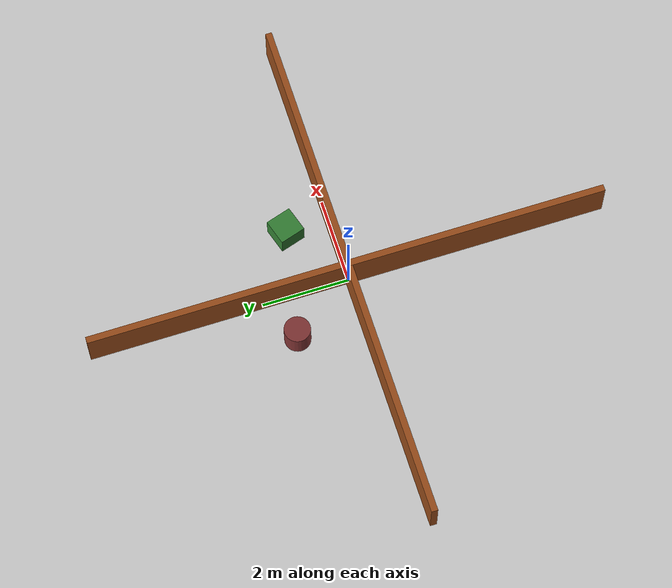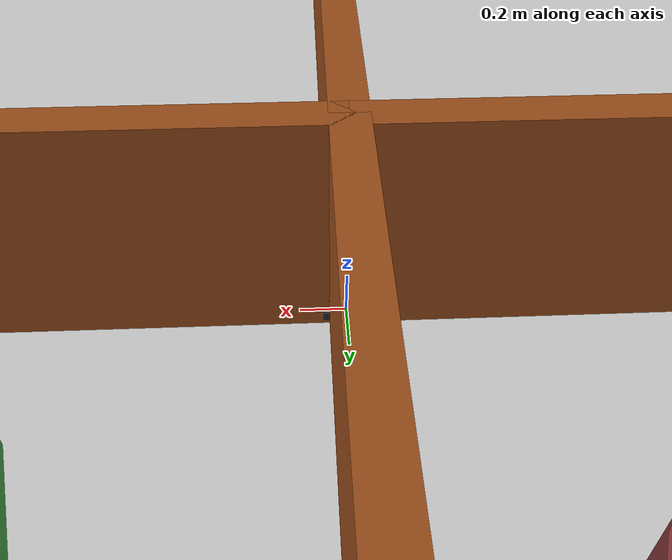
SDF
<?xml version="1.0" ?>
<sdf version="1.8">
  <world name="tank_world">

    <!--                  PHYSICS                     -->
    <physics name="default" type="ode">
      <max_step_size>0.001</max_step_size>
      <real_time_factor>1.0</real_time_factor>
    </physics>

    <!--              REQUIRED SYSTEM PLUGINS         -->
    <!-- Physics engine -->
    <plugin filename="ignition-gazebo-physics-system"
            name="ignition::gazebo::systems::Physics"/>
    <!-- Sensor rendering (LIDAR, IMU) -->
    <plugin filename="ignition-gazebo-sensors-system"
            name="ignition::gazebo::systems::Sensors">
      <render_engine>ogre2</render_engine>
    </plugin>
    <!-- Scene broadcasting (needed for GUI if ever used) -->
    <plugin filename="ignition-gazebo-scene-broadcaster-system"
            name="ignition::gazebo::systems::SceneBroadcaster"/>
    <!-- User commands (spawn, delete, etc.) -->
    <plugin filename="ignition-gazebo-user-commands-system"
            name="ignition::gazebo::systems::UserCommands"/>

    <!--               GROUND + LIGHT                 -->
    <light type="directional" name="sun">
      <cast_shadows>true</cast_shadows>
      <pose>0 0 10 0 0 0</pose>
      <diffuse>0.8 0.8 0.8 1</diffuse>
      <specular>0.2 0.2 0.2 1</specular>
      <direction>-0.5 0.1 -0.9</direction>
    </light>

    <model name="ground_plane">
      <static>true</static>
      <link name="ground_link">
        <collision name="collision">
          <geometry><plane><normal>0 0 1</normal><size>100 100</size></plane></geometry>
        </collision>
        <visual name="visual">
          <geometry><plane><normal>0 0 1</normal><size>100 100</size></plane></geometry>
          <material>
            <ambient>0.8 0.8 0.8 1</ambient>
            <diffuse>0.8 0.8 0.8 1</diffuse>
          </material>
        </visual>
      </link>
    </model>

    <!--            SOME WALLS TO SCAN                -->
    <!-- Simple obstacles so the LIDAR has something  -->
    <!-- to see and SLAM has features to work with.   -->

    <model name="wall_north">
      <static>true</static>
      <pose>3 0 0.5 0 0 0</pose>
      <link name="link">
        <collision name="collision">
          <geometry><box><size>6 0.15 1.0</size></box></geometry>
        </collision>
        <visual name="visual">
          <geometry><box><size>6 0.15 1.0</size></box></geometry>
          <material><ambient>0.6 0.3 0.1 1</ambient><diffuse>0.6 0.3 0.1 1</diffuse></material>
        </visual>
      </link>
    </model>

    <model name="wall_south">
      <static>true</static>
      <pose>-3 0 0.5 0 0 0</pose>
      <link name="link">
        <collision name="collision">
          <geometry><box><size>6 0.15 1.0</size></box></geometry>
        </collision>
        <visual name="visual">
          <geometry><box><size>6 0.15 1.0</size></box></geometry>
          <material><ambient>0.6 0.3 0.1 1</ambient><diffuse>0.6 0.3 0.1 1</diffuse></material>
        </visual>
      </link>
    </model>

    <model name="wall_east">
      <static>true</static>
      <pose>0 3 0.5 0 0 1.5708</pose>
      <link name="link">
        <collision name="collision">
          <geometry><box><size>6 0.15 1.0</size></box></geometry>
        </collision>
        <visual name="visual">
          <geometry><box><size>6 0.15 1.0</size></box></geometry>
          <material><ambient>0.6 0.3 0.1 1</ambient><diffuse>0.6 0.3 0.1 1</diffuse></material>
        </visual>
      </link>
    </model>

    <model name="wall_west">
      <static>true</static>
      <pose>0 -3 0.5 0 0 1.5708</pose>
      <link name="link">
        <collision name="collision">
          <geometry><box><size>6 0.15 1.0</size></box></geometry>
        </collision>
        <visual name="visual">
          <geometry><box><size>6 0.15 1.0</size></box></geometry>
          <material><ambient>0.6 0.3 0.1 1</ambient><diffuse>0.6 0.3 0.1 1</diffuse></material>
        </visual>
      </link>
    </model>

    <!-- A box obstacle in the room -->
    <model name="obstacle_box">
      <static>true</static>
      <pose>1.5 1.0 0.25 0 0 0.3</pose>
      <link name="link">
        <collision name="collision">
          <geometry><box><size>0.6 0.6 0.5</size></box></geometry>
        </collision>
        <visual name="visual">
          <geometry><box><size>0.6 0.6 0.5</size></box></geometry>
          <material><ambient>0.2 0.5 0.2 1</ambient><diffuse>0.2 0.5 0.2 1</diffuse></material>
        </visual>
      </link>
    </model>

    <!-- A cylinder obstacle -->
    <model name="obstacle_cylinder">
      <static>true</static>
      <pose>-1.0 1.5 0.3 0 0 0</pose>
      <link name="link">
        <collision name="collision">
          <geometry><cylinder><radius>0.3</radius><length>0.6</length></cylinder></geometry>
        </collision>
        <visual name="visual">
          <geometry><cylinder><radius>0.3</radius><length>0.6</length></cylinder></geometry>
          <material><ambient>0.5 0.2 0.2 1</ambient><diffuse>0.5 0.2 0.2 1</diffuse></material>
        </visual>
      </link>
    </model>

    <!--                  TANK MODEL                  -->
    <model name="my_tank">
      <pose>0 0 0.05 0 0 0</pose>

      <!-- ======== BASE LINK (chassis) ======== -->
      <link name="base_link">
        <inertial>
          <pose>0.0115 0 0.004 0 0 0</pose>
          <mass>1.02</mass>
          <inertia>
            <ixx>0.00283</ixx><ixy>0</ixy><ixz>0</ixz>
            <iyy>0.00301</iyy><iyz>0</iyz>
            <izz>0.00554</izz>
          </inertia>
        </inertial>
        <collision name="chassis_collision">
          <pose>0.0115 0 0.004 0 0 0</pose>
          <geometry><box><size>0.1833 0.1776 0.0423</size></box></geometry>
        </collision>
        <visual name="chassis_visual">
          <pose>0.0115 0 0.004 0 0 0</pose>
          <geometry><box><size>0.1833 0.1776 0.0423</size></box></geometry>
          <material><ambient>0.1 0.1 0.1 1</ambient><diffuse>0.15 0.15 0.15 1</diffuse></material>
        </visual>

        <!-- Platform (visual only, merged into base_link) -->
        <visual name="platform_visual">
          <pose>0 0 0.082 0 0 0</pose>
          <geometry><box><size>0.2 0.152 0.002</size></box></geometry>
          <material><ambient>0.1 0.1 0.1 1</ambient><diffuse>0.1 0.1 0.1 1</diffuse></material>
        </visual>

        <!-- LIDAR housing (visual only) -->
        <visual name="lidar_housing_visual">
          <pose>0.05 0 0.112 0 0 0</pose>
          <geometry><cylinder><radius>0.035</radius><length>0.03</length></cylinder></geometry>
          <material><ambient>0.4 0.4 0.4 1</ambient><diffuse>0.5 0.5 0.5 1</diffuse></material>
        </visual>

        <!-- IMU sensor (attached to base_link) -->
        <sensor name="imu_sensor" type="imu">
          <pose>0 0 0.078 0 0 0</pose>
          <always_on>true</always_on>
          <update_rate>50</update_rate>
          <topic>imu</topic>
          <imu>
            <angular_velocity>
              <x><noise type="gaussian"><mean>0</mean><stddev>0.0005</stddev></noise></x>
              <y><noise type="gaussian"><mean>0</mean><stddev>0.0005</stddev></noise></y>
              <z><noise type="gaussian"><mean>0</mean><stddev>0.0005</stddev></noise></z>
            </angular_velocity>
            <linear_acceleration>
              <x><noise type="gaussian"><mean>0</mean><stddev>0.005</stddev></noise></x>
              <y><noise type="gaussian"><mean>0</mean><stddev>0.005</stddev></noise></y>
              <z><noise type="gaussian"><mean>0</mean><stddev>0.005</stddev></noise></z>
            </linear_acceleration>
          </imu>
        </sensor>
      </link>

      <!-- ======== LIDAR LINK ======== -->
      <link name="lidar_link">
        <pose relative_to="base_link">0.05 0 0.112 0 0 0</pose>
        <inertial>
          <mass>0.05</mass>
          <inertia>
            <ixx>0.00001</ixx><ixy>0</ixy><ixz>0</ixz>
            <iyy>0.00001</iyy><iyz>0</iyz>
            <izz>0.00001</izz>
          </inertia>
        </inertial>
        <sensor name="lidar_sensor" type="gpu_lidar">
          <always_on>true</always_on>
          <update_rate>6</update_rate>
          <topic>scan</topic>
          <lidar>
            <scan>
              <horizontal>
                <samples>720</samples>
                <resolution>1</resolution>
                <min_angle>-3.14159</min_angle>
                <max_angle>3.14159</max_angle>
              </horizontal>
            </scan>
            <range>
              <min>0.12</min>
              <max>8.0</max>
              <resolution>0.01</resolution>
            </range>
            <noise>
              <type>gaussian</type>
              <mean>0</mean>
              <stddev>0.01</stddev>
            </noise>
          </lidar>
        </sensor>
      </link>
      <joint name="lidar_joint" type="fixed">
        <parent>base_link</parent>
        <child>lidar_link</child>
      </joint>

      <!-- ======== LEFT DRIVE WHEEL ======== -->
      <link name="left_drive">
        <pose relative_to="base_link">-0.0579 0.068 0.001 -1.5708 0 0</pose>
        <inertial>
          <mass>0.05</mass>
          <inertia>
            <ixx>0.000016</ixx><ixy>0</ixy><ixz>0</ixz>
            <iyy>0.000016</iyy><iyz>0</iyz>
            <izz>0.000016</izz>
          </inertia>
        </inertial>
        <collision name="collision">
          <geometry><cylinder><radius>0.019</radius><length>0.023</length></cylinder></geometry>
          <surface>
            <friction><ode><mu>1.5</mu><mu2>1.5</mu2></ode></friction>
          </surface>
        </collision>
        <visual name="visual">
          <geometry><cylinder><radius>0.019</radius><length>0.023</length></cylinder></geometry>
          <material><ambient>0.2 0.2 0.2 1</ambient><diffuse>0.2 0.2 0.2 1</diffuse></material>
        </visual>
      </link>
      <joint name="left_drive_joint" type="revolute">
        <parent>base_link</parent>
        <child>left_drive</child>
        <axis><xyz>0 0 1</xyz><limit><effort>5</effort></limit></axis>
      </joint>

      <!-- ======== RIGHT DRIVE WHEEL ======== -->
      <link name="right_drive">
        <pose relative_to="base_link">0.058 -0.068 0.001 -1.5708 0 0</pose>
        <inertial>
          <mass>0.05</mass>
          <inertia>
            <ixx>0.000016</ixx><ixy>0</ixy><ixz>0</ixz>
            <iyy>0.000016</iyy><iyz>0</iyz>
            <izz>0.000016</izz>
          </inertia>
        </inertial>
        <collision name="collision">
          <geometry><cylinder><radius>0.019</radius><length>0.023</length></cylinder></geometry>
          <surface>
            <friction><ode><mu>1.5</mu><mu2>1.5</mu2></ode></friction>
          </surface>
        </collision>
        <visual name="visual">
          <geometry><cylinder><radius>0.019</radius><length>0.023</length></cylinder></geometry>
          <material><ambient>0.2 0.2 0.2 1</ambient><diffuse>0.2 0.2 0.2 1</diffuse></material>
        </visual>
      </link>
      <joint name="right_drive_joint" type="revolute">
        <parent>base_link</parent>
        <child>right_drive</child>
        <axis><xyz>0 0 1</xyz><limit><effort>5</effort></limit></axis>
      </joint>

      <!-- ======== LEFT BEARING WHEEL ======== -->
      <link name="left_bearing">
        <pose relative_to="base_link">0.058 0.0686 0.001 -1.5708 0 0</pose>
        <inertial>
          <mass>0.05</mass>
          <inertia>
            <ixx>0.000016</ixx><ixy>0</ixy><ixz>0</ixz>
            <iyy>0.000016</iyy><iyz>0</iyz>
            <izz>0.000016</izz>
          </inertia>
        </inertial>
        <collision name="collision">
          <geometry><cylinder><radius>0.019</radius><length>0.023</length></cylinder></geometry>
          <surface>
            <friction><ode><mu>1.5</mu><mu2>1.5</mu2></ode></friction>
          </surface>
        </collision>
        <visual name="visual">
          <geometry><cylinder><radius>0.019</radius><length>0.023</length></cylinder></geometry>
          <material><ambient>0.2 0.2 0.2 1</ambient><diffuse>0.2 0.2 0.2 1</diffuse></material>
        </visual>
      </link>
      <joint name="left_bearing_joint" type="revolute">
        <parent>base_link</parent>
        <child>left_bearing</child>
        <axis><xyz>0 0 1</xyz><limit><effort>5</effort></limit></axis>
      </joint>

      <!-- ======== RIGHT BEARING WHEEL ======== -->
      <link name="right_bearing">
        <pose relative_to="base_link">-0.058 -0.069 0.001 -1.5708 0 0</pose>
        <inertial>
          <mass>0.05</mass>
          <inertia>
            <ixx>0.000016</ixx><ixy>0</ixy><ixz>0</ixz>
            <iyy>0.000016</iyy><iyz>0</iyz>
            <izz>0.000016</izz>
          </inertia>
        </inertial>
        <collision name="collision">
          <geometry><cylinder><radius>0.019</radius><length>0.023</length></cylinder></geometry>
          <surface>
            <friction><ode><mu>1.5</mu><mu2>1.5</mu2></ode></friction>
          </surface>
        </collision>
        <visual name="visual">
          <geometry><cylinder><radius>0.019</radius><length>0.023</length></cylinder></geometry>
          <material><ambient>0.2 0.2 0.2 1</ambient><diffuse>0.2 0.2 0.2 1</diffuse></material>
        </visual>
      </link>
      <joint name="right_bearing_joint" type="revolute">
        <parent>base_link</parent>
        <child>right_bearing</child>
        <axis><xyz>0 0 1</xyz><limit><effort>5</effort></limit></axis>
      </joint>

      <!-- ======== DIFF DRIVE PLUGIN ======== -->
      <plugin filename="ignition-gazebo-diff-drive-system"
              name="ignition::gazebo::systems::DiffDrive">
        <left_joint>left_drive_joint</left_joint>
        <left_joint>left_bearing_joint</left_joint>
        <right_joint>right_drive_joint</right_joint>
        <right_joint>right_bearing_joint</right_joint>
        <wheel_separation>0.136</wheel_separation>
        <wheel_radius>0.019</wheel_radius>
        <max_linear_acceleration>2.0</max_linear_acceleration>
        <topic>cmd_vel</topic>
        <odom_topic>odom</odom_topic>
        <frame_id>odom</frame_id>
        <child_frame_id>base_link</child_frame_id>
        <odom_publish_frequency>50</odom_publish_frequency>
        <tf_topic>tf</tf_topic>
      </plugin>

      <!-- ======== IMU PLUGIN ======== -->
      <plugin filename="ignition-gazebo-imu-system"
              name="ignition::gazebo::systems::Imu"/>

    </model>

  </world>
</sdf>
